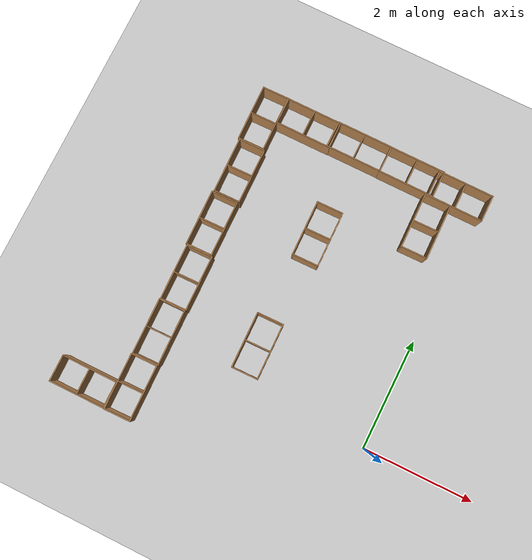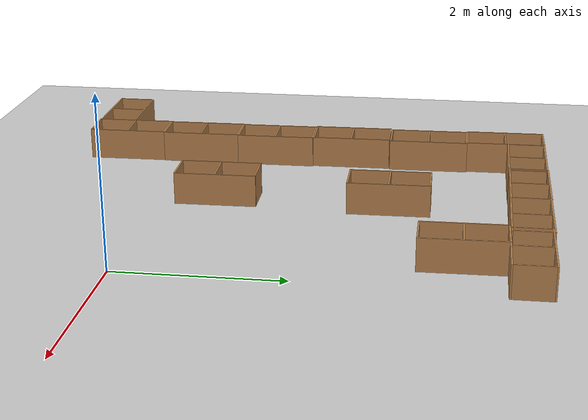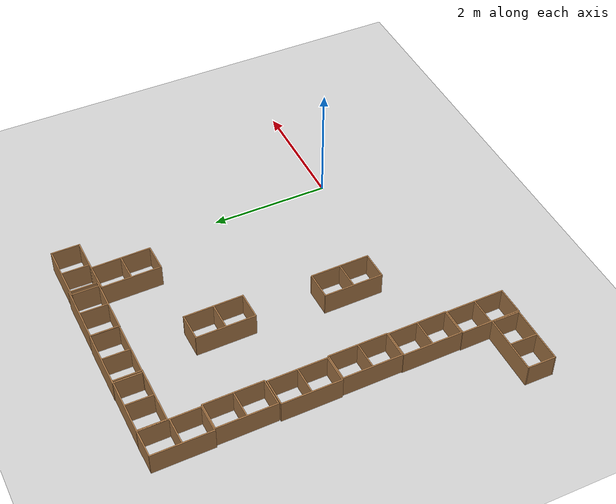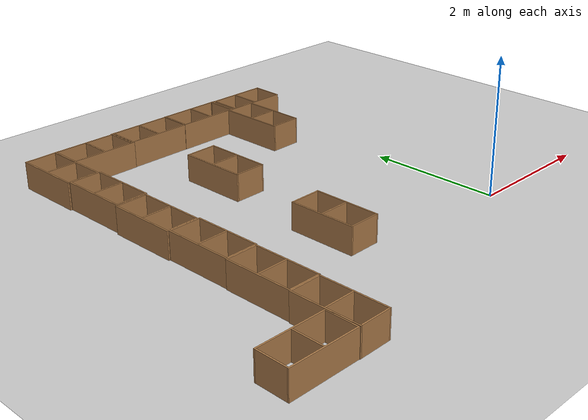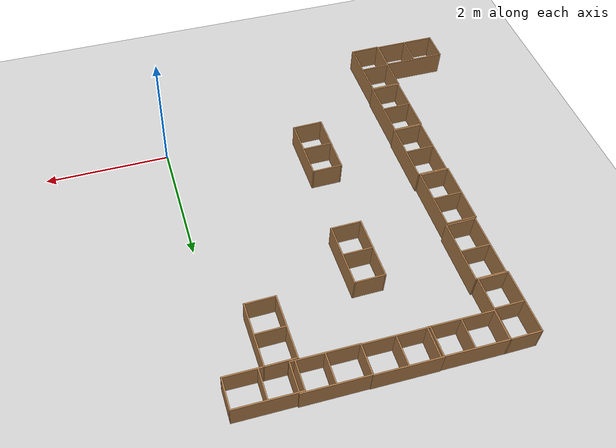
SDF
<sdf version="1.7">
 <world name="default">
  <model name="ground_plane">
   <static>1</static>
   <link name="link">
    <collision name="collision">
     <geometry><plane><normal>0 0 1</normal><size>100 100</size></plane></geometry>
     <surface>
      <contact><collide_bitmask>65535</collide_bitmask></contact>
      <friction><ode><mu>100</mu><mu2>50</mu2></ode></friction>
     </surface>
    </collision>
    <visual name="visual">
     <cast_shadows>0</cast_shadows>
     <geometry><plane><normal>0 0 1</normal><size>100 100</size></plane></geometry>
     <material>
      <script><uri>file://media/materials/scripts/gazebo.material</uri><name>Gazebo/Grey</name></script>
     </material>
    </visual>
   </link>
  </model>
  <model name="cabinet_clone_7">
   <static>1</static>
   <link name="cabinet_bottom_plate">
    <inertial>
     <pose>0 0 -1 0 -0 0</pose>
     <inertia><ixx>2.05</ixx><ixy>0</ixy><ixz>0</ixz><iyy>2.05</iyy><iyz>0</iyz><izz>2.05</izz></inertia>
     <mass>25</mass>
    </inertial>
    <collision name="cabinet_bottom_plate_geom">
     <pose>0 0 0.01 0 -0 0</pose>
     <geometry><box><size>0.45 0.45 0.02</size></box></geometry>
    </collision>
    <visual name="cabinet_bottom_plate_geom_visual">
     <pose>0 0 0.01 0 -0 0</pose>
     <geometry><box><size>0.45 0.45 0.02</size></box></geometry>
     <material>
      <script><uri>file://media/materials/scripts/gazebo.material</uri><name>Gazebo/Wood</name></script>
     </material>
    </visual>
    <collision name="cabinet_bottom_plate_geom_cabinet_back_plate">
     <pose>0.235 0 0.51 0 -0 0</pose>
     <geometry><box><size>0.02 0.45 1.02</size></box></geometry>
    </collision>
    <visual name="cabinet_bottom_plate_geom_cabinet_back_plate_visual">
     <pose>0.235 0 0.51 0 -0 0</pose>
     <geometry><box><size>0.02 0.45 1.02</size></box></geometry>
     <material>
      <script><uri>file://media/materials/scripts/gazebo.material</uri><name>Gazebo/Wood</name></script>
     </material>
    </visual>
    <collision name="cabinet_bottom_plate_geom_cabinet_left_plate">
     <pose>0 0.235 0.51 0 -0 0</pose>
     <geometry><box><size>0.45 0.02 1.02</size></box></geometry>
    </collision>
    <visual name="cabinet_bottom_plate_geom_cabinet_left_plate_visual">
     <pose>0 0.235 0.51 0 -0 0</pose>
     <geometry><box><size>0.45 0.02 1.02</size></box></geometry>
     <material>
      <script><uri>file://media/materials/scripts/gazebo.material</uri><name>Gazebo/Wood</name></script>
     </material>
    </visual>
    <collision name="cabinet_bottom_plate_geom_cabinet_middle_plate">
     <pose>0 0 0.51 0 -0 0</pose>
     <geometry><box><size>0.45 0.45 0.02</size></box></geometry>
    </collision>
    <visual name="cabinet_bottom_plate_geom_cabinet_middle_plate_visual">
     <pose>0 0 0.51 0 -0 0</pose>
     <geometry><box><size>0.45 0.45 0.02</size></box></geometry>
     <material>
      <script><uri>file://media/materials/scripts/gazebo.material</uri><name>Gazebo/Wood</name></script>
     </material>
    </visual>
    <collision name="cabinet_bottom_plate_geom_cabinet_right_plate">
     <pose>0 -0.235 0.51 0 -0 0</pose>
     <geometry><box><size>0.45 0.02 1.02</size></box></geometry>
    </collision>
    <visual name="cabinet_bottom_plate_geom_cabinet_right_plate_visual">
     <pose>0 -0.235 0.51 0 -0 0</pose>
     <geometry><box><size>0.45 0.02 1.02</size></box></geometry>
     <material>
      <script><uri>file://media/materials/scripts/gazebo.material</uri><name>Gazebo/Wood</name></script>
     </material>
    </visual>
    <collision name="cabinet_bottom_plate_geom_cabinet_top_plate">
     <pose>0 0 1.01 0 -0 0</pose>
     <geometry><box><size>0.45 0.45 0.02</size></box></geometry>
    </collision>
    <visual name="cabinet_bottom_plate_geom_cabinet_top_plate_visual">
     <pose>0 0 1.01 0 -0 0</pose>
     <geometry><box><size>0.45 0.45 0.02</size></box></geometry>
     <material>
      <script><uri>file://media/materials/scripts/gazebo.material</uri><name>Gazebo/Wood</name></script>
     </material>
    </visual>
   </link>
   <pose>-5.19727 -1.05378 0.169718 3.14159 1.5658 3.14159</pose>
  </model>
  <model name="cabinet_clone_5_clone">
   <static>1</static>
   <link name="cabinet_bottom_plate">
    <inertial>
     <pose>0 0 -1 0 -0 0</pose>
     <inertia><ixx>2.05</ixx><ixy>0</ixy><ixz>0</ixz><iyy>2.05</iyy><iyz>0</iyz><izz>2.05</izz></inertia>
     <mass>25</mass>
    </inertial>
    <collision name="cabinet_bottom_plate_geom">
     <pose>0 0 0.01 0 -0 0</pose>
     <geometry><box><size>0.45 0.45 0.02</size></box></geometry>
    </collision>
    <visual name="cabinet_bottom_plate_geom_visual">
     <pose>0 0 0.01 0 -0 0</pose>
     <geometry><box><size>0.45 0.45 0.02</size></box></geometry>
     <material>
      <script><uri>file://media/materials/scripts/gazebo.material</uri><name>Gazebo/Wood</name></script>
     </material>
    </visual>
    <collision name="cabinet_bottom_plate_geom_cabinet_back_plate">
     <pose>0.235 0 0.51 0 -0 0</pose>
     <geometry><box><size>0.02 0.45 1.02</size></box></geometry>
    </collision>
    <visual name="cabinet_bottom_plate_geom_cabinet_back_plate_visual">
     <pose>0.235 0 0.51 0 -0 0</pose>
     <geometry><box><size>0.02 0.45 1.02</size></box></geometry>
     <material>
      <script><uri>file://media/materials/scripts/gazebo.material</uri><name>Gazebo/Wood</name></script>
     </material>
    </visual>
    <collision name="cabinet_bottom_plate_geom_cabinet_left_plate">
     <pose>0 0.235 0.51 0 -0 0</pose>
     <geometry><box><size>0.45 0.02 1.02</size></box></geometry>
    </collision>
    <visual name="cabinet_bottom_plate_geom_cabinet_left_plate_visual">
     <pose>0 0.235 0.51 0 -0 0</pose>
     <geometry><box><size>0.45 0.02 1.02</size></box></geometry>
     <material>
      <script><uri>file://media/materials/scripts/gazebo.material</uri><name>Gazebo/Wood</name></script>
     </material>
    </visual>
    <collision name="cabinet_bottom_plate_geom_cabinet_middle_plate">
     <pose>0 0 0.51 0 -0 0</pose>
     <geometry><box><size>0.45 0.45 0.02</size></box></geometry>
    </collision>
    <visual name="cabinet_bottom_plate_geom_cabinet_middle_plate_visual">
     <pose>0 0 0.51 0 -0 0</pose>
     <geometry><box><size>0.45 0.45 0.02</size></box></geometry>
     <material>
      <script><uri>file://media/materials/scripts/gazebo.material</uri><name>Gazebo/Wood</name></script>
     </material>
    </visual>
    <collision name="cabinet_bottom_plate_geom_cabinet_right_plate">
     <pose>0 -0.235 0.51 0 -0 0</pose>
     <geometry><box><size>0.45 0.02 1.02</size></box></geometry>
    </collision>
    <visual name="cabinet_bottom_plate_geom_cabinet_right_plate_visual">
     <pose>0 -0.235 0.51 0 -0 0</pose>
     <geometry><box><size>0.45 0.02 1.02</size></box></geometry>
     <material>
      <script><uri>file://media/materials/scripts/gazebo.material</uri><name>Gazebo/Wood</name></script>
     </material>
    </visual>
    <collision name="cabinet_bottom_plate_geom_cabinet_top_plate">
     <pose>0 0 1.01 0 -0 0</pose>
     <geometry><box><size>0.45 0.45 0.02</size></box></geometry>
    </collision>
    <visual name="cabinet_bottom_plate_geom_cabinet_top_plate_visual">
     <pose>0 0 1.01 0 -0 0</pose>
     <geometry><box><size>0.45 0.45 0.02</size></box></geometry>
     <material>
      <script><uri>file://media/materials/scripts/gazebo.material</uri><name>Gazebo/Wood</name></script>
     </material>
    </visual>
   </link>
   <pose>-3.92998 -1.30168 0.169718 1.55548 1.5658 -3.14159</pose>
  </model>
  <model name="cabinet_clone_5_clone_0">
   <static>1</static>
   <link name="cabinet_bottom_plate">
    <inertial>
     <pose>0 0 -1 0 -0 0</pose>
     <inertia><ixx>2.05</ixx><ixy>0</ixy><ixz>0</ixz><iyy>2.05</iyy><iyz>0</iyz><izz>2.05</izz></inertia>
     <mass>25</mass>
    </inertial>
    <collision name="cabinet_bottom_plate_geom">
     <pose>0 0 0.01 0 -0 0</pose>
     <geometry><box><size>0.45 0.45 0.02</size></box></geometry>
    </collision>
    <visual name="cabinet_bottom_plate_geom_visual">
     <pose>0 0 0.01 0 -0 0</pose>
     <geometry><box><size>0.45 0.45 0.02</size></box></geometry>
     <material>
      <script><uri>file://media/materials/scripts/gazebo.material</uri><name>Gazebo/Wood</name></script>
     </material>
    </visual>
    <collision name="cabinet_bottom_plate_geom_cabinet_back_plate">
     <pose>0.235 0 0.51 0 -0 0</pose>
     <geometry><box><size>0.02 0.45 1.02</size></box></geometry>
    </collision>
    <visual name="cabinet_bottom_plate_geom_cabinet_back_plate_visual">
     <pose>0.235 0 0.51 0 -0 0</pose>
     <geometry><box><size>0.02 0.45 1.02</size></box></geometry>
     <material>
      <script><uri>file://media/materials/scripts/gazebo.material</uri><name>Gazebo/Wood</name></script>
     </material>
    </visual>
    <collision name="cabinet_bottom_plate_geom_cabinet_left_plate">
     <pose>0 0.235 0.51 0 -0 0</pose>
     <geometry><box><size>0.45 0.02 1.02</size></box></geometry>
    </collision>
    <visual name="cabinet_bottom_plate_geom_cabinet_left_plate_visual">
     <pose>0 0.235 0.51 0 -0 0</pose>
     <geometry><box><size>0.45 0.02 1.02</size></box></geometry>
     <material>
      <script><uri>file://media/materials/scripts/gazebo.material</uri><name>Gazebo/Wood</name></script>
     </material>
    </visual>
    <collision name="cabinet_bottom_plate_geom_cabinet_middle_plate">
     <pose>0 0 0.51 0 -0 0</pose>
     <geometry><box><size>0.45 0.45 0.02</size></box></geometry>
    </collision>
    <visual name="cabinet_bottom_plate_geom_cabinet_middle_plate_visual">
     <pose>0 0 0.51 0 -0 0</pose>
     <geometry><box><size>0.45 0.45 0.02</size></box></geometry>
     <material>
      <script><uri>file://media/materials/scripts/gazebo.material</uri><name>Gazebo/Wood</name></script>
     </material>
    </visual>
    <collision name="cabinet_bottom_plate_geom_cabinet_right_plate">
     <pose>0 -0.235 0.51 0 -0 0</pose>
     <geometry><box><size>0.45 0.02 1.02</size></box></geometry>
    </collision>
    <visual name="cabinet_bottom_plate_geom_cabinet_right_plate_visual">
     <pose>0 -0.235 0.51 0 -0 0</pose>
     <geometry><box><size>0.45 0.02 1.02</size></box></geometry>
     <material>
      <script><uri>file://media/materials/scripts/gazebo.material</uri><name>Gazebo/Wood</name></script>
     </material>
    </visual>
    <collision name="cabinet_bottom_plate_geom_cabinet_top_plate">
     <pose>0 0 1.01 0 -0 0</pose>
     <geometry><box><size>0.45 0.45 0.02</size></box></geometry>
    </collision>
    <visual name="cabinet_bottom_plate_geom_cabinet_top_plate_visual">
     <pose>0 0 1.01 0 -0 0</pose>
     <geometry><box><size>0.45 0.45 0.02</size></box></geometry>
     <material>
      <script><uri>file://media/materials/scripts/gazebo.material</uri><name>Gazebo/Wood</name></script>
     </material>
    </visual>
   </link>
   <pose>-3.93237 -0.282182 0.169718 1.55548 1.5658 -3.14159</pose>
  </model>
  <model name="cabinet_clone_5_clone_1">
   <static>1</static>
   <link name="cabinet_bottom_plate">
    <inertial>
     <pose>0 0 -1 0 -0 0</pose>
     <inertia><ixx>2.05</ixx><ixy>0</ixy><ixz>0</ixz><iyy>2.05</iyy><iyz>0</iyz><izz>2.05</izz></inertia>
     <mass>25</mass>
    </inertial>
    <collision name="cabinet_bottom_plate_geom">
     <pose>0 0 0.01 0 -0 0</pose>
     <geometry><box><size>0.45 0.45 0.02</size></box></geometry>
    </collision>
    <visual name="cabinet_bottom_plate_geom_visual">
     <pose>0 0 0.01 0 -0 0</pose>
     <geometry><box><size>0.45 0.45 0.02</size></box></geometry>
     <material>
      <script><uri>file://media/materials/scripts/gazebo.material</uri><name>Gazebo/Wood</name></script>
     </material>
    </visual>
    <collision name="cabinet_bottom_plate_geom_cabinet_back_plate">
     <pose>0.235 0 0.51 0 -0 0</pose>
     <geometry><box><size>0.02 0.45 1.02</size></box></geometry>
    </collision>
    <visual name="cabinet_bottom_plate_geom_cabinet_back_plate_visual">
     <pose>0.235 0 0.51 0 -0 0</pose>
     <geometry><box><size>0.02 0.45 1.02</size></box></geometry>
     <material>
      <script><uri>file://media/materials/scripts/gazebo.material</uri><name>Gazebo/Wood</name></script>
     </material>
    </visual>
    <collision name="cabinet_bottom_plate_geom_cabinet_left_plate">
     <pose>0 0.235 0.51 0 -0 0</pose>
     <geometry><box><size>0.45 0.02 1.02</size></box></geometry>
    </collision>
    <visual name="cabinet_bottom_plate_geom_cabinet_left_plate_visual">
     <pose>0 0.235 0.51 0 -0 0</pose>
     <geometry><box><size>0.45 0.02 1.02</size></box></geometry>
     <material>
      <script><uri>file://media/materials/scripts/gazebo.material</uri><name>Gazebo/Wood</name></script>
     </material>
    </visual>
    <collision name="cabinet_bottom_plate_geom_cabinet_middle_plate">
     <pose>0 0 0.51 0 -0 0</pose>
     <geometry><box><size>0.45 0.45 0.02</size></box></geometry>
    </collision>
    <visual name="cabinet_bottom_plate_geom_cabinet_middle_plate_visual">
     <pose>0 0 0.51 0 -0 0</pose>
     <geometry><box><size>0.45 0.45 0.02</size></box></geometry>
     <material>
      <script><uri>file://media/materials/scripts/gazebo.material</uri><name>Gazebo/Wood</name></script>
     </material>
    </visual>
    <collision name="cabinet_bottom_plate_geom_cabinet_right_plate">
     <pose>0 -0.235 0.51 0 -0 0</pose>
     <geometry><box><size>0.45 0.02 1.02</size></box></geometry>
    </collision>
    <visual name="cabinet_bottom_plate_geom_cabinet_right_plate_visual">
     <pose>0 -0.235 0.51 0 -0 0</pose>
     <geometry><box><size>0.45 0.02 1.02</size></box></geometry>
     <material>
      <script><uri>file://media/materials/scripts/gazebo.material</uri><name>Gazebo/Wood</name></script>
     </material>
    </visual>
    <collision name="cabinet_bottom_plate_geom_cabinet_top_plate">
     <pose>0 0 1.01 0 -0 0</pose>
     <geometry><box><size>0.45 0.45 0.02</size></box></geometry>
    </collision>
    <visual name="cabinet_bottom_plate_geom_cabinet_top_plate_visual">
     <pose>0 0 1.01 0 -0 0</pose>
     <geometry><box><size>0.45 0.45 0.02</size></box></geometry>
     <material>
      <script><uri>file://media/materials/scripts/gazebo.material</uri><name>Gazebo/Wood</name></script>
     </material>
    </visual>
   </link>
   <pose>-3.93478 0.737278 0.169718 1.55548 1.5658 -3.14159</pose>
  </model>
  <model name="cabinet_clone_5_clone_2">
   <static>1</static>
   <link name="cabinet_bottom_plate">
    <inertial>
     <pose>0 0 -1 0 -0 0</pose>
     <inertia><ixx>2.05</ixx><ixy>0</ixy><ixz>0</ixz><iyy>2.05</iyy><iyz>0</iyz><izz>2.05</izz></inertia>
     <mass>25</mass>
    </inertial>
    <collision name="cabinet_bottom_plate_geom">
     <pose>0 0 0.01 0 -0 0</pose>
     <geometry><box><size>0.45 0.45 0.02</size></box></geometry>
    </collision>
    <visual name="cabinet_bottom_plate_geom_visual">
     <pose>0 0 0.01 0 -0 0</pose>
     <geometry><box><size>0.45 0.45 0.02</size></box></geometry>
     <material>
      <script><uri>file://media/materials/scripts/gazebo.material</uri><name>Gazebo/Wood</name></script>
     </material>
    </visual>
    <collision name="cabinet_bottom_plate_geom_cabinet_back_plate">
     <pose>0.235 0 0.51 0 -0 0</pose>
     <geometry><box><size>0.02 0.45 1.02</size></box></geometry>
    </collision>
    <visual name="cabinet_bottom_plate_geom_cabinet_back_plate_visual">
     <pose>0.235 0 0.51 0 -0 0</pose>
     <geometry><box><size>0.02 0.45 1.02</size></box></geometry>
     <material>
      <script><uri>file://media/materials/scripts/gazebo.material</uri><name>Gazebo/Wood</name></script>
     </material>
    </visual>
    <collision name="cabinet_bottom_plate_geom_cabinet_left_plate">
     <pose>0 0.235 0.51 0 -0 0</pose>
     <geometry><box><size>0.45 0.02 1.02</size></box></geometry>
    </collision>
    <visual name="cabinet_bottom_plate_geom_cabinet_left_plate_visual">
     <pose>0 0.235 0.51 0 -0 0</pose>
     <geometry><box><size>0.45 0.02 1.02</size></box></geometry>
     <material>
      <script><uri>file://media/materials/scripts/gazebo.material</uri><name>Gazebo/Wood</name></script>
     </material>
    </visual>
    <collision name="cabinet_bottom_plate_geom_cabinet_middle_plate">
     <pose>0 0 0.51 0 -0 0</pose>
     <geometry><box><size>0.45 0.45 0.02</size></box></geometry>
    </collision>
    <visual name="cabinet_bottom_plate_geom_cabinet_middle_plate_visual">
     <pose>0 0 0.51 0 -0 0</pose>
     <geometry><box><size>0.45 0.45 0.02</size></box></geometry>
     <material>
      <script><uri>file://media/materials/scripts/gazebo.material</uri><name>Gazebo/Wood</name></script>
     </material>
    </visual>
    <collision name="cabinet_bottom_plate_geom_cabinet_right_plate">
     <pose>0 -0.235 0.51 0 -0 0</pose>
     <geometry><box><size>0.45 0.02 1.02</size></box></geometry>
    </collision>
    <visual name="cabinet_bottom_plate_geom_cabinet_right_plate_visual">
     <pose>0 -0.235 0.51 0 -0 0</pose>
     <geometry><box><size>0.45 0.02 1.02</size></box></geometry>
     <material>
      <script><uri>file://media/materials/scripts/gazebo.material</uri><name>Gazebo/Wood</name></script>
     </material>
    </visual>
    <collision name="cabinet_bottom_plate_geom_cabinet_top_plate">
     <pose>0 0 1.01 0 -0 0</pose>
     <geometry><box><size>0.45 0.45 0.02</size></box></geometry>
    </collision>
    <visual name="cabinet_bottom_plate_geom_cabinet_top_plate_visual">
     <pose>0 0 1.01 0 -0 0</pose>
     <geometry><box><size>0.45 0.45 0.02</size></box></geometry>
     <material>
      <script><uri>file://media/materials/scripts/gazebo.material</uri><name>Gazebo/Wood</name></script>
     </material>
    </visual>
   </link>
   <pose>-3.97336 1.75805 0.169718 1.55548 1.5658 -3.14159</pose>
  </model>
  <model name="cabinet_clone_5_clone_3">
   <static>1</static>
   <link name="cabinet_bottom_plate">
    <inertial>
     <pose>0 0 -1 0 -0 0</pose>
     <inertia><ixx>2.05</ixx><ixy>0</ixy><ixz>0</ixz><iyy>2.05</iyy><iyz>0</iyz><izz>2.05</izz></inertia>
     <mass>25</mass>
    </inertial>
    <collision name="cabinet_bottom_plate_geom">
     <pose>0 0 0.01 0 -0 0</pose>
     <geometry><box><size>0.45 0.45 0.02</size></box></geometry>
    </collision>
    <visual name="cabinet_bottom_plate_geom_visual">
     <pose>0 0 0.01 0 -0 0</pose>
     <geometry><box><size>0.45 0.45 0.02</size></box></geometry>
     <material>
      <script><uri>file://media/materials/scripts/gazebo.material</uri><name>Gazebo/Wood</name></script>
     </material>
    </visual>
    <collision name="cabinet_bottom_plate_geom_cabinet_back_plate">
     <pose>0.235 0 0.51 0 -0 0</pose>
     <geometry><box><size>0.02 0.45 1.02</size></box></geometry>
    </collision>
    <visual name="cabinet_bottom_plate_geom_cabinet_back_plate_visual">
     <pose>0.235 0 0.51 0 -0 0</pose>
     <geometry><box><size>0.02 0.45 1.02</size></box></geometry>
     <material>
      <script><uri>file://media/materials/scripts/gazebo.material</uri><name>Gazebo/Wood</name></script>
     </material>
    </visual>
    <collision name="cabinet_bottom_plate_geom_cabinet_left_plate">
     <pose>0 0.235 0.51 0 -0 0</pose>
     <geometry><box><size>0.45 0.02 1.02</size></box></geometry>
    </collision>
    <visual name="cabinet_bottom_plate_geom_cabinet_left_plate_visual">
     <pose>0 0.235 0.51 0 -0 0</pose>
     <geometry><box><size>0.45 0.02 1.02</size></box></geometry>
     <material>
      <script><uri>file://media/materials/scripts/gazebo.material</uri><name>Gazebo/Wood</name></script>
     </material>
    </visual>
    <collision name="cabinet_bottom_plate_geom_cabinet_middle_plate">
     <pose>0 0 0.51 0 -0 0</pose>
     <geometry><box><size>0.45 0.45 0.02</size></box></geometry>
    </collision>
    <visual name="cabinet_bottom_plate_geom_cabinet_middle_plate_visual">
     <pose>0 0 0.51 0 -0 0</pose>
     <geometry><box><size>0.45 0.45 0.02</size></box></geometry>
     <material>
      <script><uri>file://media/materials/scripts/gazebo.material</uri><name>Gazebo/Wood</name></script>
     </material>
    </visual>
    <collision name="cabinet_bottom_plate_geom_cabinet_right_plate">
     <pose>0 -0.235 0.51 0 -0 0</pose>
     <geometry><box><size>0.45 0.02 1.02</size></box></geometry>
    </collision>
    <visual name="cabinet_bottom_plate_geom_cabinet_right_plate_visual">
     <pose>0 -0.235 0.51 0 -0 0</pose>
     <geometry><box><size>0.45 0.02 1.02</size></box></geometry>
     <material>
      <script><uri>file://media/materials/scripts/gazebo.material</uri><name>Gazebo/Wood</name></script>
     </material>
    </visual>
    <collision name="cabinet_bottom_plate_geom_cabinet_top_plate">
     <pose>0 0 1.01 0 -0 0</pose>
     <geometry><box><size>0.45 0.45 0.02</size></box></geometry>
    </collision>
    <visual name="cabinet_bottom_plate_geom_cabinet_top_plate_visual">
     <pose>0 0 1.01 0 -0 0</pose>
     <geometry><box><size>0.45 0.45 0.02</size></box></geometry>
     <material>
      <script><uri>file://media/materials/scripts/gazebo.material</uri><name>Gazebo/Wood</name></script>
     </material>
    </visual>
   </link>
   <pose>-3.96324 2.78934 0.169718 1.55548 1.5658 -3.14159</pose>
  </model>
  <model name="cabinet_clone_5_clone_4">
   <static>1</static>
   <link name="cabinet_bottom_plate">
    <inertial>
     <pose>0 0 -1 0 -0 0</pose>
     <inertia><ixx>2.05</ixx><ixy>0</ixy><ixz>0</ixz><iyy>2.05</iyy><iyz>0</iyz><izz>2.05</izz></inertia>
     <mass>25</mass>
    </inertial>
    <collision name="cabinet_bottom_plate_geom">
     <pose>0 0 0.01 0 -0 0</pose>
     <geometry><box><size>0.45 0.45 0.02</size></box></geometry>
    </collision>
    <visual name="cabinet_bottom_plate_geom_visual">
     <pose>0 0 0.01 0 -0 0</pose>
     <geometry><box><size>0.45 0.45 0.02</size></box></geometry>
     <material>
      <script><uri>file://media/materials/scripts/gazebo.material</uri><name>Gazebo/Wood</name></script>
     </material>
    </visual>
    <collision name="cabinet_bottom_plate_geom_cabinet_back_plate">
     <pose>0.235 0 0.51 0 -0 0</pose>
     <geometry><box><size>0.02 0.45 1.02</size></box></geometry>
    </collision>
    <visual name="cabinet_bottom_plate_geom_cabinet_back_plate_visual">
     <pose>0.235 0 0.51 0 -0 0</pose>
     <geometry><box><size>0.02 0.45 1.02</size></box></geometry>
     <material>
      <script><uri>file://media/materials/scripts/gazebo.material</uri><name>Gazebo/Wood</name></script>
     </material>
    </visual>
    <collision name="cabinet_bottom_plate_geom_cabinet_left_plate">
     <pose>0 0.235 0.51 0 -0 0</pose>
     <geometry><box><size>0.45 0.02 1.02</size></box></geometry>
    </collision>
    <visual name="cabinet_bottom_plate_geom_cabinet_left_plate_visual">
     <pose>0 0.235 0.51 0 -0 0</pose>
     <geometry><box><size>0.45 0.02 1.02</size></box></geometry>
     <material>
      <script><uri>file://media/materials/scripts/gazebo.material</uri><name>Gazebo/Wood</name></script>
     </material>
    </visual>
    <collision name="cabinet_bottom_plate_geom_cabinet_middle_plate">
     <pose>0 0 0.51 0 -0 0</pose>
     <geometry><box><size>0.45 0.45 0.02</size></box></geometry>
    </collision>
    <visual name="cabinet_bottom_plate_geom_cabinet_middle_plate_visual">
     <pose>0 0 0.51 0 -0 0</pose>
     <geometry><box><size>0.45 0.45 0.02</size></box></geometry>
     <material>
      <script><uri>file://media/materials/scripts/gazebo.material</uri><name>Gazebo/Wood</name></script>
     </material>
    </visual>
    <collision name="cabinet_bottom_plate_geom_cabinet_right_plate">
     <pose>0 -0.235 0.51 0 -0 0</pose>
     <geometry><box><size>0.45 0.02 1.02</size></box></geometry>
    </collision>
    <visual name="cabinet_bottom_plate_geom_cabinet_right_plate_visual">
     <pose>0 -0.235 0.51 0 -0 0</pose>
     <geometry><box><size>0.45 0.02 1.02</size></box></geometry>
     <material>
      <script><uri>file://media/materials/scripts/gazebo.material</uri><name>Gazebo/Wood</name></script>
     </material>
    </visual>
    <collision name="cabinet_bottom_plate_geom_cabinet_top_plate">
     <pose>0 0 1.01 0 -0 0</pose>
     <geometry><box><size>0.45 0.45 0.02</size></box></geometry>
    </collision>
    <visual name="cabinet_bottom_plate_geom_cabinet_top_plate_visual">
     <pose>0 0 1.01 0 -0 0</pose>
     <geometry><box><size>0.45 0.45 0.02</size></box></geometry>
     <material>
      <script><uri>file://media/materials/scripts/gazebo.material</uri><name>Gazebo/Wood</name></script>
     </material>
    </visual>
   </link>
   <pose>-4.00717 3.80501 0.169718 1.55548 1.5658 -3.14159</pose>
  </model>
  <model name="cabinet_clone_0_clone">
   <static>1</static>
   <link name="cabinet_bottom_plate">
    <inertial>
     <pose>0 0 -1 0 -0 0</pose>
     <inertia><ixx>2.05</ixx><ixy>0</ixy><ixz>0</ixz><iyy>2.05</iyy><iyz>0</iyz><izz>2.05</izz></inertia>
     <mass>25</mass>
    </inertial>
    <collision name="cabinet_bottom_plate_geom">
     <pose>0 0 0.01 0 -0 0</pose>
     <geometry><box><size>0.45 0.45 0.02</size></box></geometry>
    </collision>
    <visual name="cabinet_bottom_plate_geom_visual">
     <pose>0 0 0.01 0 -0 0</pose>
     <geometry><box><size>0.45 0.45 0.02</size></box></geometry>
     <material>
      <script><uri>file://media/materials/scripts/gazebo.material</uri><name>Gazebo/Wood</name></script>
     </material>
    </visual>
    <collision name="cabinet_bottom_plate_geom_cabinet_back_plate">
     <pose>0.235 0 0.51 0 -0 0</pose>
     <geometry><box><size>0.02 0.45 1.02</size></box></geometry>
    </collision>
    <visual name="cabinet_bottom_plate_geom_cabinet_back_plate_visual">
     <pose>0.235 0 0.51 0 -0 0</pose>
     <geometry><box><size>0.02 0.45 1.02</size></box></geometry>
     <material>
      <script><uri>file://media/materials/scripts/gazebo.material</uri><name>Gazebo/Wood</name></script>
     </material>
    </visual>
    <collision name="cabinet_bottom_plate_geom_cabinet_left_plate">
     <pose>0 0.235 0.51 0 -0 0</pose>
     <geometry><box><size>0.45 0.02 1.02</size></box></geometry>
    </collision>
    <visual name="cabinet_bottom_plate_geom_cabinet_left_plate_visual">
     <pose>0 0.235 0.51 0 -0 0</pose>
     <geometry><box><size>0.45 0.02 1.02</size></box></geometry>
     <material>
      <script><uri>file://media/materials/scripts/gazebo.material</uri><name>Gazebo/Wood</name></script>
     </material>
    </visual>
    <collision name="cabinet_bottom_plate_geom_cabinet_middle_plate">
     <pose>0 0 0.51 0 -0 0</pose>
     <geometry><box><size>0.45 0.45 0.02</size></box></geometry>
    </collision>
    <visual name="cabinet_bottom_plate_geom_cabinet_middle_plate_visual">
     <pose>0 0 0.51 0 -0 0</pose>
     <geometry><box><size>0.45 0.45 0.02</size></box></geometry>
     <material>
      <script><uri>file://media/materials/scripts/gazebo.material</uri><name>Gazebo/Wood</name></script>
     </material>
    </visual>
    <collision name="cabinet_bottom_plate_geom_cabinet_right_plate">
     <pose>0 -0.235 0.51 0 -0 0</pose>
     <geometry><box><size>0.45 0.02 1.02</size></box></geometry>
    </collision>
    <visual name="cabinet_bottom_plate_geom_cabinet_right_plate_visual">
     <pose>0 -0.235 0.51 0 -0 0</pose>
     <geometry><box><size>0.45 0.02 1.02</size></box></geometry>
     <material>
      <script><uri>file://media/materials/scripts/gazebo.material</uri><name>Gazebo/Wood</name></script>
     </material>
    </visual>
    <collision name="cabinet_bottom_plate_geom_cabinet_top_plate">
     <pose>0 0 1.01 0 -0 0</pose>
     <geometry><box><size>0.45 0.45 0.02</size></box></geometry>
    </collision>
    <visual name="cabinet_bottom_plate_geom_cabinet_top_plate_visual">
     <pose>0 0 1.01 0 -0 0</pose>
     <geometry><box><size>0.45 0.45 0.02</size></box></geometry>
     <material>
      <script><uri>file://media/materials/scripts/gazebo.material</uri><name>Gazebo/Wood</name></script>
     </material>
    </visual>
   </link>
   <pose>-3.78195 4.58272 0.169718 3.14159 1.5658 3.14159</pose>
  </model>
  <model name="cabinet_clone_0_clone_0">
   <static>1</static>
   <link name="cabinet_bottom_plate">
    <inertial>
     <pose>0 0 -1 0 -0 0</pose>
     <inertia><ixx>2.05</ixx><ixy>0</ixy><ixz>0</ixz><iyy>2.05</iyy><iyz>0</iyz><izz>2.05</izz></inertia>
     <mass>25</mass>
    </inertial>
    <collision name="cabinet_bottom_plate_geom">
     <pose>0 0 0.01 0 -0 0</pose>
     <geometry><box><size>0.45 0.45 0.02</size></box></geometry>
    </collision>
    <visual name="cabinet_bottom_plate_geom_visual">
     <pose>0 0 0.01 0 -0 0</pose>
     <geometry><box><size>0.45 0.45 0.02</size></box></geometry>
     <material>
      <script><uri>file://media/materials/scripts/gazebo.material</uri><name>Gazebo/Wood</name></script>
     </material>
    </visual>
    <collision name="cabinet_bottom_plate_geom_cabinet_back_plate">
     <pose>0.235 0 0.51 0 -0 0</pose>
     <geometry><box><size>0.02 0.45 1.02</size></box></geometry>
    </collision>
    <visual name="cabinet_bottom_plate_geom_cabinet_back_plate_visual">
     <pose>0.235 0 0.51 0 -0 0</pose>
     <geometry><box><size>0.02 0.45 1.02</size></box></geometry>
     <material>
      <script><uri>file://media/materials/scripts/gazebo.material</uri><name>Gazebo/Wood</name></script>
     </material>
    </visual>
    <collision name="cabinet_bottom_plate_geom_cabinet_left_plate">
     <pose>0 0.235 0.51 0 -0 0</pose>
     <geometry><box><size>0.45 0.02 1.02</size></box></geometry>
    </collision>
    <visual name="cabinet_bottom_plate_geom_cabinet_left_plate_visual">
     <pose>0 0.235 0.51 0 -0 0</pose>
     <geometry><box><size>0.45 0.02 1.02</size></box></geometry>
     <material>
      <script><uri>file://media/materials/scripts/gazebo.material</uri><name>Gazebo/Wood</name></script>
     </material>
    </visual>
    <collision name="cabinet_bottom_plate_geom_cabinet_middle_plate">
     <pose>0 0 0.51 0 -0 0</pose>
     <geometry><box><size>0.45 0.45 0.02</size></box></geometry>
    </collision>
    <visual name="cabinet_bottom_plate_geom_cabinet_middle_plate_visual">
     <pose>0 0 0.51 0 -0 0</pose>
     <geometry><box><size>0.45 0.45 0.02</size></box></geometry>
     <material>
      <script><uri>file://media/materials/scripts/gazebo.material</uri><name>Gazebo/Wood</name></script>
     </material>
    </visual>
    <collision name="cabinet_bottom_plate_geom_cabinet_right_plate">
     <pose>0 -0.235 0.51 0 -0 0</pose>
     <geometry><box><size>0.45 0.02 1.02</size></box></geometry>
    </collision>
    <visual name="cabinet_bottom_plate_geom_cabinet_right_plate_visual">
     <pose>0 -0.235 0.51 0 -0 0</pose>
     <geometry><box><size>0.45 0.02 1.02</size></box></geometry>
     <material>
      <script><uri>file://media/materials/scripts/gazebo.material</uri><name>Gazebo/Wood</name></script>
     </material>
    </visual>
    <collision name="cabinet_bottom_plate_geom_cabinet_top_plate">
     <pose>0 0 1.01 0 -0 0</pose>
     <geometry><box><size>0.45 0.45 0.02</size></box></geometry>
    </collision>
    <visual name="cabinet_bottom_plate_geom_cabinet_top_plate_visual">
     <pose>0 0 1.01 0 -0 0</pose>
     <geometry><box><size>0.45 0.45 0.02</size></box></geometry>
     <material>
      <script><uri>file://media/materials/scripts/gazebo.material</uri><name>Gazebo/Wood</name></script>
     </material>
    </visual>
   </link>
   <pose>-2.8238 4.58892 0.169718 3.14159 1.5658 3.14159</pose>
  </model>
  <model name="cabinet_clone_0_clone_1">
   <static>1</static>
   <link name="cabinet_bottom_plate">
    <inertial>
     <pose>0 0 -1 0 -0 0</pose>
     <inertia><ixx>2.05</ixx><ixy>0</ixy><ixz>0</ixz><iyy>2.05</iyy><iyz>0</iyz><izz>2.05</izz></inertia>
     <mass>25</mass>
    </inertial>
    <collision name="cabinet_bottom_plate_geom">
     <pose>0 0 0.01 0 -0 0</pose>
     <geometry><box><size>0.45 0.45 0.02</size></box></geometry>
    </collision>
    <visual name="cabinet_bottom_plate_geom_visual">
     <pose>0 0 0.01 0 -0 0</pose>
     <geometry><box><size>0.45 0.45 0.02</size></box></geometry>
     <material>
      <script><uri>file://media/materials/scripts/gazebo.material</uri><name>Gazebo/Wood</name></script>
     </material>
    </visual>
    <collision name="cabinet_bottom_plate_geom_cabinet_back_plate">
     <pose>0.235 0 0.51 0 -0 0</pose>
     <geometry><box><size>0.02 0.45 1.02</size></box></geometry>
    </collision>
    <visual name="cabinet_bottom_plate_geom_cabinet_back_plate_visual">
     <pose>0.235 0 0.51 0 -0 0</pose>
     <geometry><box><size>0.02 0.45 1.02</size></box></geometry>
     <material>
      <script><uri>file://media/materials/scripts/gazebo.material</uri><name>Gazebo/Wood</name></script>
     </material>
    </visual>
    <collision name="cabinet_bottom_plate_geom_cabinet_left_plate">
     <pose>0 0.235 0.51 0 -0 0</pose>
     <geometry><box><size>0.45 0.02 1.02</size></box></geometry>
    </collision>
    <visual name="cabinet_bottom_plate_geom_cabinet_left_plate_visual">
     <pose>0 0.235 0.51 0 -0 0</pose>
     <geometry><box><size>0.45 0.02 1.02</size></box></geometry>
     <material>
      <script><uri>file://media/materials/scripts/gazebo.material</uri><name>Gazebo/Wood</name></script>
     </material>
    </visual>
    <collision name="cabinet_bottom_plate_geom_cabinet_middle_plate">
     <pose>0 0 0.51 0 -0 0</pose>
     <geometry><box><size>0.45 0.45 0.02</size></box></geometry>
    </collision>
    <visual name="cabinet_bottom_plate_geom_cabinet_middle_plate_visual">
     <pose>0 0 0.51 0 -0 0</pose>
     <geometry><box><size>0.45 0.45 0.02</size></box></geometry>
     <material>
      <script><uri>file://media/materials/scripts/gazebo.material</uri><name>Gazebo/Wood</name></script>
     </material>
    </visual>
    <collision name="cabinet_bottom_plate_geom_cabinet_right_plate">
     <pose>0 -0.235 0.51 0 -0 0</pose>
     <geometry><box><size>0.45 0.02 1.02</size></box></geometry>
    </collision>
    <visual name="cabinet_bottom_plate_geom_cabinet_right_plate_visual">
     <pose>0 -0.235 0.51 0 -0 0</pose>
     <geometry><box><size>0.45 0.02 1.02</size></box></geometry>
     <material>
      <script><uri>file://media/materials/scripts/gazebo.material</uri><name>Gazebo/Wood</name></script>
     </material>
    </visual>
    <collision name="cabinet_bottom_plate_geom_cabinet_top_plate">
     <pose>0 0 1.01 0 -0 0</pose>
     <geometry><box><size>0.45 0.45 0.02</size></box></geometry>
    </collision>
    <visual name="cabinet_bottom_plate_geom_cabinet_top_plate_visual">
     <pose>0 0 1.01 0 -0 0</pose>
     <geometry><box><size>0.45 0.45 0.02</size></box></geometry>
     <material>
      <script><uri>file://media/materials/scripts/gazebo.material</uri><name>Gazebo/Wood</name></script>
     </material>
    </visual>
   </link>
   <pose>-1.81752 4.58333 0.169718 3.14159 1.5658 3.14159</pose>
  </model>
  <model name="cabinet_clone_0_clone_2">
   <static>1</static>
   <link name="cabinet_bottom_plate">
    <inertial>
     <pose>0 0 -1 0 -0 0</pose>
     <inertia><ixx>2.05</ixx><ixy>0</ixy><ixz>0</ixz><iyy>2.05</iyy><iyz>0</iyz><izz>2.05</izz></inertia>
     <mass>25</mass>
    </inertial>
    <collision name="cabinet_bottom_plate_geom">
     <pose>0 0 0.01 0 -0 0</pose>
     <geometry><box><size>0.45 0.45 0.02</size></box></geometry>
    </collision>
    <visual name="cabinet_bottom_plate_geom_visual">
     <pose>0 0 0.01 0 -0 0</pose>
     <geometry><box><size>0.45 0.45 0.02</size></box></geometry>
     <material>
      <script><uri>file://media/materials/scripts/gazebo.material</uri><name>Gazebo/Wood</name></script>
     </material>
    </visual>
    <collision name="cabinet_bottom_plate_geom_cabinet_back_plate">
     <pose>0.235 0 0.51 0 -0 0</pose>
     <geometry><box><size>0.02 0.45 1.02</size></box></geometry>
    </collision>
    <visual name="cabinet_bottom_plate_geom_cabinet_back_plate_visual">
     <pose>0.235 0 0.51 0 -0 0</pose>
     <geometry><box><size>0.02 0.45 1.02</size></box></geometry>
     <material>
      <script><uri>file://media/materials/scripts/gazebo.material</uri><name>Gazebo/Wood</name></script>
     </material>
    </visual>
    <collision name="cabinet_bottom_plate_geom_cabinet_left_plate">
     <pose>0 0.235 0.51 0 -0 0</pose>
     <geometry><box><size>0.45 0.02 1.02</size></box></geometry>
    </collision>
    <visual name="cabinet_bottom_plate_geom_cabinet_left_plate_visual">
     <pose>0 0.235 0.51 0 -0 0</pose>
     <geometry><box><size>0.45 0.02 1.02</size></box></geometry>
     <material>
      <script><uri>file://media/materials/scripts/gazebo.material</uri><name>Gazebo/Wood</name></script>
     </material>
    </visual>
    <collision name="cabinet_bottom_plate_geom_cabinet_middle_plate">
     <pose>0 0 0.51 0 -0 0</pose>
     <geometry><box><size>0.45 0.45 0.02</size></box></geometry>
    </collision>
    <visual name="cabinet_bottom_plate_geom_cabinet_middle_plate_visual">
     <pose>0 0 0.51 0 -0 0</pose>
     <geometry><box><size>0.45 0.45 0.02</size></box></geometry>
     <material>
      <script><uri>file://media/materials/scripts/gazebo.material</uri><name>Gazebo/Wood</name></script>
     </material>
    </visual>
    <collision name="cabinet_bottom_plate_geom_cabinet_right_plate">
     <pose>0 -0.235 0.51 0 -0 0</pose>
     <geometry><box><size>0.45 0.02 1.02</size></box></geometry>
    </collision>
    <visual name="cabinet_bottom_plate_geom_cabinet_right_plate_visual">
     <pose>0 -0.235 0.51 0 -0 0</pose>
     <geometry><box><size>0.45 0.02 1.02</size></box></geometry>
     <material>
      <script><uri>file://media/materials/scripts/gazebo.material</uri><name>Gazebo/Wood</name></script>
     </material>
    </visual>
    <collision name="cabinet_bottom_plate_geom_cabinet_top_plate">
     <pose>0 0 1.01 0 -0 0</pose>
     <geometry><box><size>0.45 0.45 0.02</size></box></geometry>
    </collision>
    <visual name="cabinet_bottom_plate_geom_cabinet_top_plate_visual">
     <pose>0 0 1.01 0 -0 0</pose>
     <geometry><box><size>0.45 0.45 0.02</size></box></geometry>
     <material>
      <script><uri>file://media/materials/scripts/gazebo.material</uri><name>Gazebo/Wood</name></script>
     </material>
    </visual>
   </link>
   <pose>-0.895871 4.56495 0.169718 3.14159 1.5658 3.14159</pose>
  </model>
  <model name="cabinet_clone_5_clone_14">
   <static>1</static>
   <link name="cabinet_bottom_plate">
    <inertial>
     <pose>0 0 -1 0 -0 0</pose>
     <inertia><ixx>2.05</ixx><ixy>0</ixy><ixz>0</ixz><iyy>2.05</iyy><iyz>0</iyz><izz>2.05</izz></inertia>
     <mass>25</mass>
    </inertial>
    <collision name="cabinet_bottom_plate_geom">
     <pose>0 0 0.01 0 -0 0</pose>
     <geometry><box><size>0.45 0.45 0.02</size></box></geometry>
    </collision>
    <visual name="cabinet_bottom_plate_geom_visual">
     <pose>0 0 0.01 0 -0 0</pose>
     <geometry><box><size>0.45 0.45 0.02</size></box></geometry>
     <material>
      <script><uri>file://media/materials/scripts/gazebo.material</uri><name>Gazebo/Wood</name></script>
     </material>
    </visual>
    <collision name="cabinet_bottom_plate_geom_cabinet_back_plate">
     <pose>0.235 0 0.51 0 -0 0</pose>
     <geometry><box><size>0.02 0.45 1.02</size></box></geometry>
    </collision>
    <visual name="cabinet_bottom_plate_geom_cabinet_back_plate_visual">
     <pose>0.235 0 0.51 0 -0 0</pose>
     <geometry><box><size>0.02 0.45 1.02</size></box></geometry>
     <material>
      <script><uri>file://media/materials/scripts/gazebo.material</uri><name>Gazebo/Wood</name></script>
     </material>
    </visual>
    <collision name="cabinet_bottom_plate_geom_cabinet_left_plate">
     <pose>0 0.235 0.51 0 -0 0</pose>
     <geometry><box><size>0.45 0.02 1.02</size></box></geometry>
    </collision>
    <visual name="cabinet_bottom_plate_geom_cabinet_left_plate_visual">
     <pose>0 0.235 0.51 0 -0 0</pose>
     <geometry><box><size>0.45 0.02 1.02</size></box></geometry>
     <material>
      <script><uri>file://media/materials/scripts/gazebo.material</uri><name>Gazebo/Wood</name></script>
     </material>
    </visual>
    <collision name="cabinet_bottom_plate_geom_cabinet_middle_plate">
     <pose>0 0 0.51 0 -0 0</pose>
     <geometry><box><size>0.45 0.45 0.02</size></box></geometry>
    </collision>
    <visual name="cabinet_bottom_plate_geom_cabinet_middle_plate_visual">
     <pose>0 0 0.51 0 -0 0</pose>
     <geometry><box><size>0.45 0.45 0.02</size></box></geometry>
     <material>
      <script><uri>file://media/materials/scripts/gazebo.material</uri><name>Gazebo/Wood</name></script>
     </material>
    </visual>
    <collision name="cabinet_bottom_plate_geom_cabinet_right_plate">
     <pose>0 -0.235 0.51 0 -0 0</pose>
     <geometry><box><size>0.45 0.02 1.02</size></box></geometry>
    </collision>
    <visual name="cabinet_bottom_plate_geom_cabinet_right_plate_visual">
     <pose>0 -0.235 0.51 0 -0 0</pose>
     <geometry><box><size>0.45 0.02 1.02</size></box></geometry>
     <material>
      <script><uri>file://media/materials/scripts/gazebo.material</uri><name>Gazebo/Wood</name></script>
     </material>
    </visual>
    <collision name="cabinet_bottom_plate_geom_cabinet_top_plate">
     <pose>0 0 1.01 0 -0 0</pose>
     <geometry><box><size>0.45 0.45 0.02</size></box></geometry>
    </collision>
    <visual name="cabinet_bottom_plate_geom_cabinet_top_plate_visual">
     <pose>0 0 1.01 0 -0 0</pose>
     <geometry><box><size>0.45 0.45 0.02</size></box></geometry>
     <material>
      <script><uri>file://media/materials/scripts/gazebo.material</uri><name>Gazebo/Wood</name></script>
     </material>
    </visual>
   </link>
   <pose>-2.35289 0.237603 0.169718 1.55548 1.5658 -3.14159</pose>
  </model>
  <model name="cabinet_clone_5_clone_15">
   <static>1</static>
   <link name="cabinet_bottom_plate">
    <inertial>
     <pose>0 0 -1 0 -0 0</pose>
     <inertia><ixx>2.05</ixx><ixy>0</ixy><ixz>0</ixz><iyy>2.05</iyy><iyz>0</iyz><izz>2.05</izz></inertia>
     <mass>25</mass>
    </inertial>
    <collision name="cabinet_bottom_plate_geom">
     <pose>0 0 0.01 0 -0 0</pose>
     <geometry><box><size>0.45 0.45 0.02</size></box></geometry>
    </collision>
    <visual name="cabinet_bottom_plate_geom_visual">
     <pose>0 0 0.01 0 -0 0</pose>
     <geometry><box><size>0.45 0.45 0.02</size></box></geometry>
     <material>
      <script><uri>file://media/materials/scripts/gazebo.material</uri><name>Gazebo/Wood</name></script>
     </material>
    </visual>
    <collision name="cabinet_bottom_plate_geom_cabinet_back_plate">
     <pose>0.235 0 0.51 0 -0 0</pose>
     <geometry><box><size>0.02 0.45 1.02</size></box></geometry>
    </collision>
    <visual name="cabinet_bottom_plate_geom_cabinet_back_plate_visual">
     <pose>0.235 0 0.51 0 -0 0</pose>
     <geometry><box><size>0.02 0.45 1.02</size></box></geometry>
     <material>
      <script><uri>file://media/materials/scripts/gazebo.material</uri><name>Gazebo/Wood</name></script>
     </material>
    </visual>
    <collision name="cabinet_bottom_plate_geom_cabinet_left_plate">
     <pose>0 0.235 0.51 0 -0 0</pose>
     <geometry><box><size>0.45 0.02 1.02</size></box></geometry>
    </collision>
    <visual name="cabinet_bottom_plate_geom_cabinet_left_plate_visual">
     <pose>0 0.235 0.51 0 -0 0</pose>
     <geometry><box><size>0.45 0.02 1.02</size></box></geometry>
     <material>
      <script><uri>file://media/materials/scripts/gazebo.material</uri><name>Gazebo/Wood</name></script>
     </material>
    </visual>
    <collision name="cabinet_bottom_plate_geom_cabinet_middle_plate">
     <pose>0 0 0.51 0 -0 0</pose>
     <geometry><box><size>0.45 0.45 0.02</size></box></geometry>
    </collision>
    <visual name="cabinet_bottom_plate_geom_cabinet_middle_plate_visual">
     <pose>0 0 0.51 0 -0 0</pose>
     <geometry><box><size>0.45 0.45 0.02</size></box></geometry>
     <material>
      <script><uri>file://media/materials/scripts/gazebo.material</uri><name>Gazebo/Wood</name></script>
     </material>
    </visual>
    <collision name="cabinet_bottom_plate_geom_cabinet_right_plate">
     <pose>0 -0.235 0.51 0 -0 0</pose>
     <geometry><box><size>0.45 0.02 1.02</size></box></geometry>
    </collision>
    <visual name="cabinet_bottom_plate_geom_cabinet_right_plate_visual">
     <pose>0 -0.235 0.51 0 -0 0</pose>
     <geometry><box><size>0.45 0.02 1.02</size></box></geometry>
     <material>
      <script><uri>file://media/materials/scripts/gazebo.material</uri><name>Gazebo/Wood</name></script>
     </material>
    </visual>
    <collision name="cabinet_bottom_plate_geom_cabinet_top_plate">
     <pose>0 0 1.01 0 -0 0</pose>
     <geometry><box><size>0.45 0.45 0.02</size></box></geometry>
    </collision>
    <visual name="cabinet_bottom_plate_geom_cabinet_top_plate_visual">
     <pose>0 0 1.01 0 -0 0</pose>
     <geometry><box><size>0.45 0.45 0.02</size></box></geometry>
     <material>
      <script><uri>file://media/materials/scripts/gazebo.material</uri><name>Gazebo/Wood</name></script>
     </material>
    </visual>
   </link>
   <pose>-2.28081 2.38605 0.169718 1.55548 1.5658 -3.14159</pose>
  </model>
  <model name="cabinet_clone_5_clone_13_clone_2">
   <static>1</static>
   <link name="cabinet_bottom_plate">
    <inertial>
     <pose>0 0 -1 0 -0 0</pose>
     <inertia><ixx>2.05</ixx><ixy>0</ixy><ixz>0</ixz><iyy>2.05</iyy><iyz>0</iyz><izz>2.05</izz></inertia>
     <mass>25</mass>
    </inertial>
    <collision name="cabinet_bottom_plate_geom">
     <pose>0 0 0.01 0 -0 0</pose>
     <geometry><box><size>0.45 0.45 0.02</size></box></geometry>
    </collision>
    <visual name="cabinet_bottom_plate_geom_visual">
     <pose>0 0 0.01 0 -0 0</pose>
     <geometry><box><size>0.45 0.45 0.02</size></box></geometry>
     <material>
      <script><uri>file://media/materials/scripts/gazebo.material</uri><name>Gazebo/Wood</name></script>
     </material>
    </visual>
    <collision name="cabinet_bottom_plate_geom_cabinet_back_plate">
     <pose>0.235 0 0.51 0 -0 0</pose>
     <geometry><box><size>0.02 0.45 1.02</size></box></geometry>
    </collision>
    <visual name="cabinet_bottom_plate_geom_cabinet_back_plate_visual">
     <pose>0.235 0 0.51 0 -0 0</pose>
     <geometry><box><size>0.02 0.45 1.02</size></box></geometry>
     <material>
      <script><uri>file://media/materials/scripts/gazebo.material</uri><name>Gazebo/Wood</name></script>
     </material>
    </visual>
    <collision name="cabinet_bottom_plate_geom_cabinet_left_plate">
     <pose>0 0.235 0.51 0 -0 0</pose>
     <geometry><box><size>0.45 0.02 1.02</size></box></geometry>
    </collision>
    <visual name="cabinet_bottom_plate_geom_cabinet_left_plate_visual">
     <pose>0 0.235 0.51 0 -0 0</pose>
     <geometry><box><size>0.45 0.02 1.02</size></box></geometry>
     <material>
      <script><uri>file://media/materials/scripts/gazebo.material</uri><name>Gazebo/Wood</name></script>
     </material>
    </visual>
    <collision name="cabinet_bottom_plate_geom_cabinet_middle_plate">
     <pose>0 0 0.51 0 -0 0</pose>
     <geometry><box><size>0.45 0.45 0.02</size></box></geometry>
    </collision>
    <visual name="cabinet_bottom_plate_geom_cabinet_middle_plate_visual">
     <pose>0 0 0.51 0 -0 0</pose>
     <geometry><box><size>0.45 0.45 0.02</size></box></geometry>
     <material>
      <script><uri>file://media/materials/scripts/gazebo.material</uri><name>Gazebo/Wood</name></script>
     </material>
    </visual>
    <collision name="cabinet_bottom_plate_geom_cabinet_right_plate">
     <pose>0 -0.235 0.51 0 -0 0</pose>
     <geometry><box><size>0.45 0.02 1.02</size></box></geometry>
    </collision>
    <visual name="cabinet_bottom_plate_geom_cabinet_right_plate_visual">
     <pose>0 -0.235 0.51 0 -0 0</pose>
     <geometry><box><size>0.45 0.02 1.02</size></box></geometry>
     <material>
      <script><uri>file://media/materials/scripts/gazebo.material</uri><name>Gazebo/Wood</name></script>
     </material>
    </visual>
    <collision name="cabinet_bottom_plate_geom_cabinet_top_plate">
     <pose>0 0 1.01 0 -0 0</pose>
     <geometry><box><size>0.45 0.45 0.02</size></box></geometry>
    </collision>
    <visual name="cabinet_bottom_plate_geom_cabinet_top_plate_visual">
     <pose>0 0 1.01 0 -0 0</pose>
     <geometry><box><size>0.45 0.45 0.02</size></box></geometry>
     <material>
      <script><uri>file://media/materials/scripts/gazebo.material</uri><name>Gazebo/Wood</name></script>
     </material>
    </visual>
   </link>
   <pose>-0.686693 3.31642 0.169718 1.55548 1.5658 -3.14159</pose>
  </model>
 </world>
</sdf>
